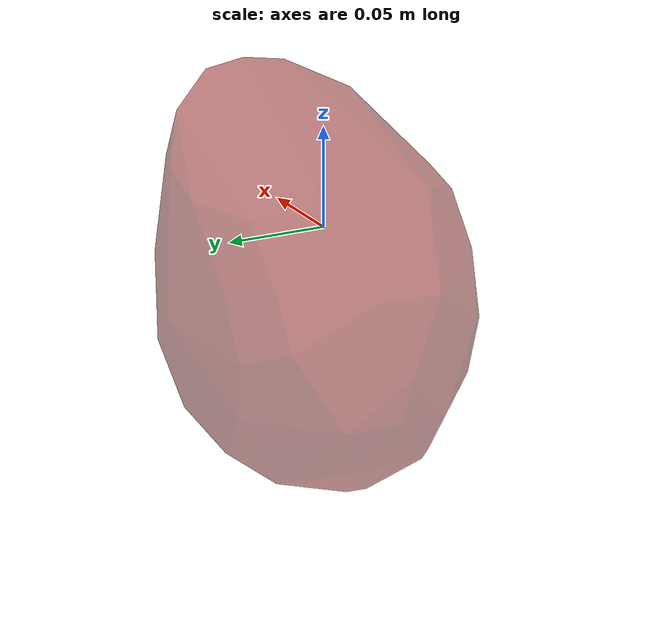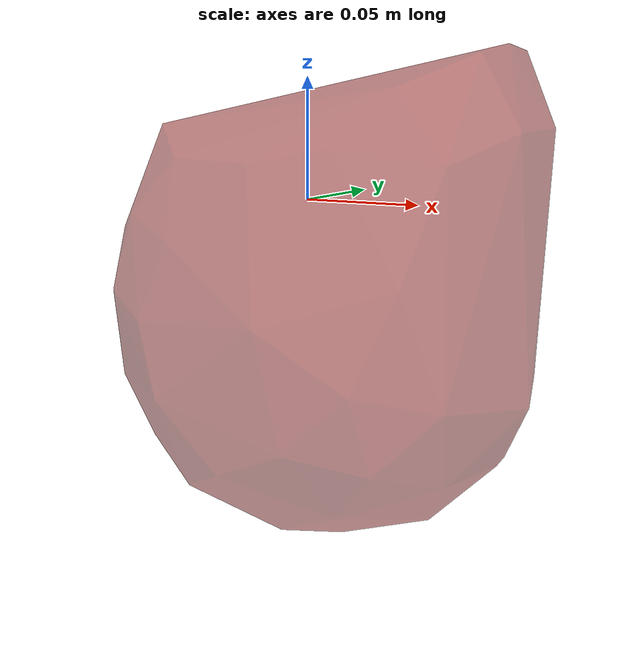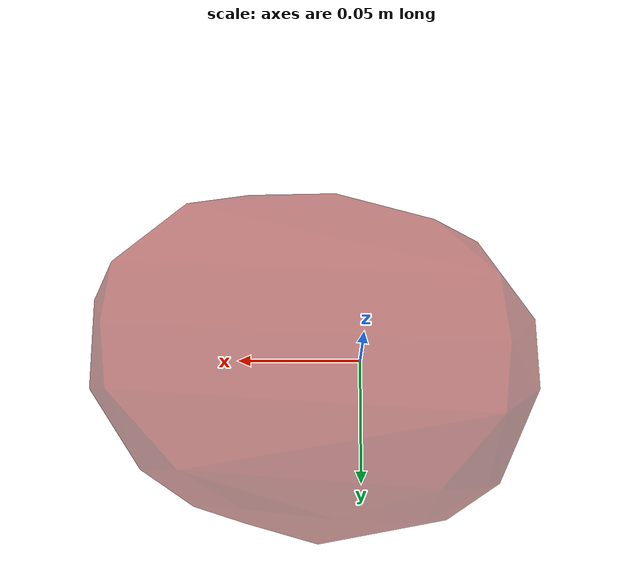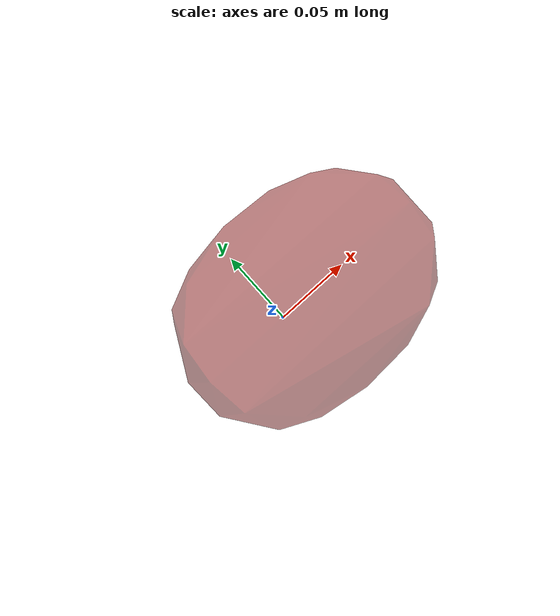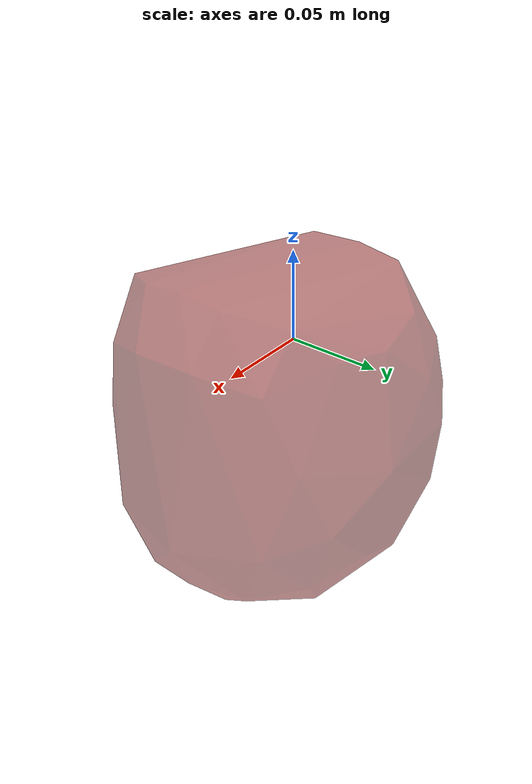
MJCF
<?xml version="1.0" encoding="UTF-8"?>
<mujoco model="manual_collision">
  <compiler angle="radian"/>
  <default>
    <default class="collision">
      <geom type="mesh" group="0" rgba="0.5 0 0 0.5"/>
    </default>
  </default>
  <asset>
    <mesh name="_sn_python1_manual_collision_1" file="meshes/sn_python1_manual_collision_1.stl"/>
  </asset>
  <worldbody>
    <body name="python1" pos="0 0 0" quat="1 0 0 0">
      <inertial pos="0 0 0" mass="1" diaginertia="1e-4 1e-4 1e-4"/>
      <geom class="collision" type="mesh" mesh="_sn_python1_manual_collision_1" pos="0 0 0" quat="1 0 0 0"/>
    </body>
  </worldbody>
</mujoco>
